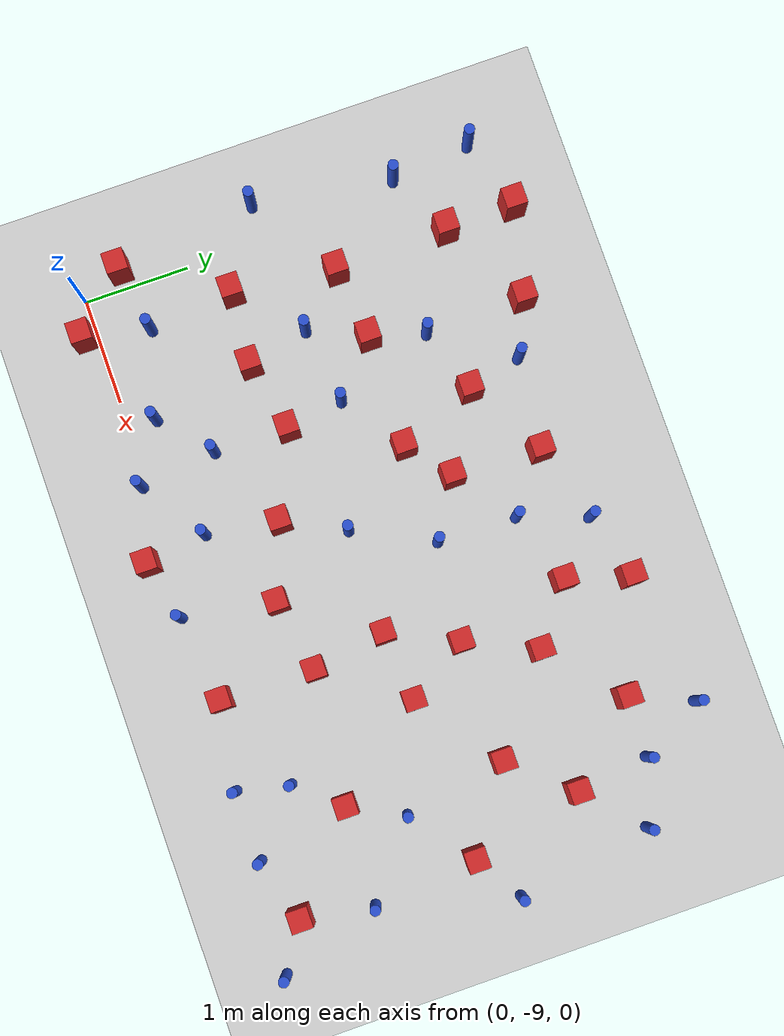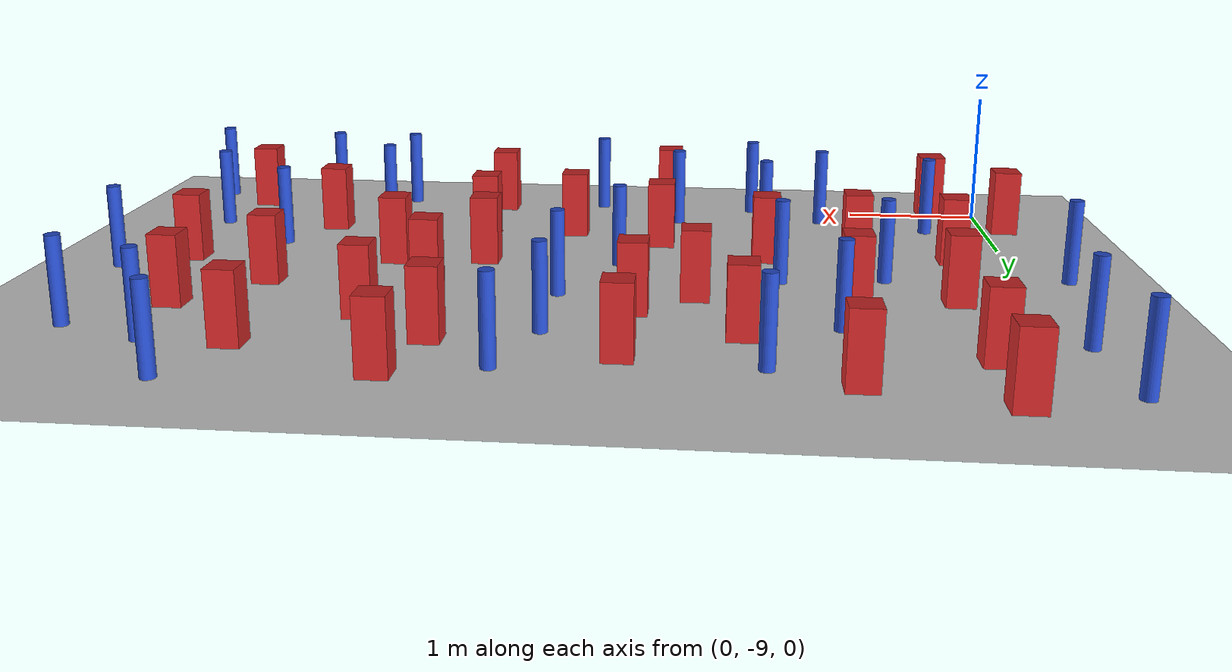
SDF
<sdf version="1.6">
 <world name="default">
  <model name="ground_plane">
   <static>1</static>
   <link name="link">
    <collision name="collision">
     <geometry><plane><normal>0 0 1</normal><size>100 100</size></plane></geometry>
     <surface><friction><ode><mu>100</mu><mu2>50</mu2></ode></friction></surface>
    </collision>
    <visual name="visual">
     <cast_shadows>0</cast_shadows>
     <geometry><plane><normal>0 0 1</normal><size>100 100</size></plane></geometry>
     <material>
      <ambient>1.0 1.0 1.0 1.0</ambient>
      <diffuse>0.8 0.8 0.8 1.0</diffuse>
      <specular>0.01 0.01 0.01 1.000000</specular>
     </material>
    </visual>
   </link>
  </model>
  <model name="square_post_obstacle3">
   <static>true</static>
   <pose>4.49015289714 -7.34152833254 1.91545236811e-07 -7.35059704564e-06 1.12565212e-07 2.39332434364e-05</pose>
   <link name="link">
    <pose>0 0 0.25 0 -0 0</pose>
    <inertial>
     <mass>100</mass>
     <inertia>
      <ixx>0.166667</ixx>
      <ixy>0</ixy>
      <ixz>0</ixz>
      <iyy>0.166667</iyy>
      <iyz>0</iyz>
      <izz>0.166667</izz>
     </inertia>
    </inertial>
    <collision name="collision"><geometry><box><size>.2 .2 .5</size></box></geometry></collision>
    <visual name="visual">
     <geometry><box><size>.2 .2 .5</size></box></geometry>
     <material>
      <script><name>Gazebo/Red</name><uri>file://media/materials/scripts/gazebo.material</uri></script>
     </material>
    </visual>
   </link>
  </model>
  <model name="square_post_obstacle10">
   <static>true</static>
   <pose>1.76560631317 -7.61351531478 1.91545236811e-07 -7.35059704564e-06 1.12565212e-07 2.39332434364e-05</pose>
   <link name="link">
    <pose>0 0 0.25 0 -0 0</pose>
    <inertial>
     <mass>100</mass>
     <inertia>
      <ixx>0.166667</ixx>
      <ixy>0</ixy>
      <ixz>0</ixz>
      <iyy>0.166667</iyy>
      <iyz>0</iyz>
      <izz>0.166667</izz>
     </inertia>
    </inertial>
    <collision name="collision"><geometry><box><size>.2 .2 .5</size></box></geometry></collision>
    <visual name="visual">
     <geometry><box><size>.2 .2 .5</size></box></geometry>
     <material>
      <script><name>Gazebo/Red</name><uri>file://media/materials/scripts/gazebo.material</uri></script>
     </material>
    </visual>
   </link>
  </model>
  <model name="square_post_obstacle15">
   <static>true</static>
   <pose>5.75156060621 -6.21697039321 1.91545236811e-07 -7.35059704564e-06 1.12565212e-07 2.39332434364e-05</pose>
   <link name="link">
    <pose>0 0 0.25 0 -0 0</pose>
    <inertial>
     <mass>100</mass>
     <inertia>
      <ixx>0.166667</ixx>
      <ixy>0</ixy>
      <ixz>0</ixz>
      <iyy>0.166667</iyy>
      <iyz>0</iyz>
      <izz>0.166667</izz>
     </inertia>
    </inertial>
    <collision name="collision"><geometry><box><size>.2 .2 .5</size></box></geometry></collision>
    <visual name="visual">
     <geometry><box><size>.2 .2 .5</size></box></geometry>
     <material>
      <script><name>Gazebo/Red</name><uri>file://media/materials/scripts/gazebo.material</uri></script>
     </material>
    </visual>
   </link>
  </model>
  <model name="square_post_obstacle24">
   <static>true</static>
   <pose>3.91813997311 -8.99396543054 1.91545236811e-07 -7.35059704564e-06 1.12565212e-07 2.39332434364e-05</pose>
   <link name="link">
    <pose>0 0 0.25 0 -0 0</pose>
    <inertial>
     <mass>100</mass>
     <inertia>
      <ixx>0.166667</ixx>
      <ixy>0</ixy>
      <ixz>0</ixz>
      <iyy>0.166667</iyy>
      <iyz>0</iyz>
      <izz>0.166667</izz>
     </inertia>
    </inertial>
    <collision name="collision"><geometry><box><size>.2 .2 .5</size></box></geometry></collision>
    <visual name="visual">
     <geometry><box><size>.2 .2 .5</size></box></geometry>
     <material>
      <script><name>Gazebo/Red</name><uri>file://media/materials/scripts/gazebo.material</uri></script>
     </material>
    </visual>
   </link>
  </model>
  <model name="square_post_obstacle28">
   <static>true</static>
   <pose>5.27055570146 -6.76627332676 1.91545236811e-07 -7.35059704564e-06 1.12565212e-07 2.39332434364e-05</pose>
   <link name="link">
    <pose>0 0 0.25 0 -0 0</pose>
    <inertial>
     <mass>100</mass>
     <inertia>
      <ixx>0.166667</ixx>
      <ixy>0</ixy>
      <ixz>0</ixz>
      <iyy>0.166667</iyy>
      <iyz>0</iyz>
      <izz>0.166667</izz>
     </inertia>
    </inertial>
    <collision name="collision"><geometry><box><size>.2 .2 .5</size></box></geometry></collision>
    <visual name="visual">
     <geometry><box><size>.2 .2 .5</size></box></geometry>
     <material>
      <script><name>Gazebo/Red</name><uri>file://media/materials/scripts/gazebo.material</uri></script>
     </material>
    </visual>
   </link>
  </model>
  <model name="pole_obstacle21">
   <static>true</static>
   <pose>0.467460412805 -8.50239128569 7.38925637345e-09 -8.47170692797e-08 1.24976764852e-08 -1.74513093028e-07</pose>
   <link name="link">
    <pose>0 0 0.3 0 -0 0</pose>
    <inertial>
     <mass>1</mass>
     <inertia><ixx>0.145833</ixx><ixy>0</ixy><ixz>0</ixz><iyy>0.145833</iyy><iyz>0</iyz><izz>0.125</izz></inertia>
    </inertial>
    <collision name="collision">
     <geometry><cylinder><radius>0.05</radius><length>.6</length></cylinder></geometry>
    </collision>
    <visual name="visual">
     <geometry><cylinder><radius>0.05</radius><length>.6</length></cylinder></geometry>
     <material>
      <script><name>Gazebo/Blue</name><uri>file://media/materials/scripts/gazebo.material</uri></script>
     </material>
    </visual>
   </link>
  </model>
  <model name="square_post_obstacle34">
   <static>true</static>
   <pose>1.0899897333 -7.74528293625 1.91545236811e-07 -7.35059704564e-06 1.12565212e-07 2.39332434364e-05</pose>
   <link name="link">
    <pose>0 0 0.25 0 -0 0</pose>
    <inertial>
     <mass>100</mass>
     <inertia>
      <ixx>0.166667</ixx>
      <ixy>0</ixy>
      <ixz>0</ixz>
      <iyy>0.166667</iyy>
      <iyz>0</iyz>
      <izz>0.166667</izz>
     </inertia>
    </inertial>
    <collision name="collision"><geometry><box><size>.2 .2 .5</size></box></geometry></collision>
    <visual name="visual">
     <geometry><box><size>.2 .2 .5</size></box></geometry>
     <material>
      <script><name>Gazebo/Red</name><uri>file://media/materials/scripts/gazebo.material</uri></script>
     </material>
    </visual>
   </link>
  </model>
  <model name="square_post_obstacle35">
   <static>true</static>
   <pose>3.93639156301 -8.10154853966 1.91545236811e-07 -7.35059704564e-06 1.12565212e-07 2.39332434364e-05</pose>
   <link name="link">
    <pose>0 0 0.25 0 -0 0</pose>
    <inertial>
     <mass>100</mass>
     <inertia>
      <ixx>0.166667</ixx>
      <ixy>0</ixy>
      <ixz>0</ixz>
      <iyy>0.166667</iyy>
      <iyz>0</iyz>
      <izz>0.166667</izz>
     </inertia>
    </inertial>
    <collision name="collision"><geometry><box><size>.2 .2 .5</size></box></geometry></collision>
    <visual name="visual">
     <geometry><box><size>.2 .2 .5</size></box></geometry>
     <material>
      <script><name>Gazebo/Red</name><uri>file://media/materials/scripts/gazebo.material</uri></script>
     </material>
    </visual>
   </link>
  </model>
  <model name="square_post_obstacle38">
   <static>true</static>
   <pose>3.90478553042 -5.69663542759 1.91545236811e-07 -7.35059704564e-06 1.12565212e-07 2.39332434364e-05</pose>
   <link name="link">
    <pose>0 0 0.25 0 -0 0</pose>
    <inertial>
     <mass>100</mass>
     <inertia>
      <ixx>0.166667</ixx>
      <ixy>0</ixy>
      <ixz>0</ixz>
      <iyy>0.166667</iyy>
      <iyz>0</iyz>
      <izz>0.166667</izz>
     </inertia>
    </inertial>
    <collision name="collision"><geometry><box><size>.2 .2 .5</size></box></geometry></collision>
    <visual name="visual">
     <geometry><box><size>.2 .2 .5</size></box></geometry>
     <material>
      <script><name>Gazebo/Red</name><uri>file://media/materials/scripts/gazebo.material</uri></script>
     </material>
    </visual>
   </link>
  </model>
  <model name="pole_obstacle41">
   <static>true</static>
   <pose>1.3408904319 -6.10898649915 7.38925637345e-09 -8.47170692799e-08 1.24976765033e-08 -1.74513093018e-07</pose>
   <link name="link">
    <pose>0 0 0.3 0 -0 0</pose>
    <inertial>
     <mass>1</mass>
     <inertia><ixx>0.145833</ixx><ixy>0</ixy><ixz>0</ixz><iyy>0.145833</iyy><iyz>0</iyz><izz>0.125</izz></inertia>
    </inertial>
    <collision name="collision">
     <geometry><cylinder><radius>0.05</radius><length>.6</length></cylinder></geometry>
    </collision>
    <visual name="visual">
     <geometry><cylinder><radius>0.05</radius><length>.6</length></cylinder></geometry>
     <material>
      <script><name>Gazebo/Blue</name><uri>file://media/materials/scripts/gazebo.material</uri></script>
     </material>
    </visual>
   </link>
  </model>
  <model name="square_post_obstacle42">
   <static>true</static>
   <pose>4.13331218403 -6.76436423348 1.91545236811e-07 -7.35059704564e-06 1.12565212e-07 2.39332434364e-05</pose>
   <link name="link">
    <pose>0 0 0.25 0 -0 0</pose>
    <inertial>
     <mass>100</mass>
     <inertia>
      <ixx>0.166667</ixx>
      <ixy>0</ixy>
      <ixz>0</ixz>
      <iyy>0.166667</iyy>
      <iyz>0</iyz>
      <izz>0.166667</izz>
     </inertia>
    </inertial>
    <collision name="collision"><geometry><box><size>.2 .2 .5</size></box></geometry></collision>
    <visual name="visual">
     <geometry><box><size>.2 .2 .5</size></box></geometry>
     <material>
      <script><name>Gazebo/Red</name><uri>file://media/materials/scripts/gazebo.material</uri></script>
     </material>
    </visual>
   </link>
  </model>
  <model name="square_post_obstacle44">
   <static>true</static>
   <pose>0.517624580864 -6.70950547858 1.91545236811e-07 -7.35059704564e-06 1.12565212e-07 2.39332434364e-05</pose>
   <link name="link">
    <pose>0 0 0.25 0 -0 0</pose>
    <inertial>
     <mass>100</mass>
     <inertia>
      <ixx>0.166667</ixx>
      <ixy>0</ixy>
      <ixz>0</ixz>
      <iyy>0.166667</iyy>
      <iyz>0</iyz>
      <izz>0.166667</izz>
     </inertia>
    </inertial>
    <collision name="collision"><geometry><box><size>.2 .2 .5</size></box></geometry></collision>
    <visual name="visual">
     <geometry><box><size>.2 .2 .5</size></box></geometry>
     <material>
      <script><name>Gazebo/Red</name><uri>file://media/materials/scripts/gazebo.material</uri></script>
     </material>
    </visual>
   </link>
  </model>
  <model name="square_post_obstacle53">
   <static>true</static>
   <pose>2.55260413519 -7.962114731 1.91545236811e-07 -7.35059704564e-06 1.12565212e-07 2.39332434364e-05</pose>
   <link name="link">
    <pose>0 0 0.25 0 -0 0</pose>
    <inertial>
     <mass>100</mass>
     <inertia>
      <ixx>0.166667</ixx>
      <ixy>0</ixy>
      <ixz>0</ixz>
      <iyy>0.166667</iyy>
      <iyz>0</iyz>
      <izz>0.166667</izz>
     </inertia>
    </inertial>
    <collision name="collision"><geometry><box><size>.2 .2 .5</size></box></geometry></collision>
    <visual name="visual">
     <geometry><box><size>.2 .2 .5</size></box></geometry>
     <material>
      <script><name>Gazebo/Red</name><uri>file://media/materials/scripts/gazebo.material</uri></script>
     </material>
    </visual>
   </link>
  </model>
  <model name="pole_obstacle59">
   <static>true</static>
   <pose>6.48221668015 -7.01142120705 7.38925637345e-09 -8.47170692796e-08 1.24976764786e-08 -1.74513093032e-07</pose>
   <link name="link">
    <pose>0 0 0.3 0 -0 0</pose>
    <inertial>
     <mass>1</mass>
     <inertia><ixx>0.145833</ixx><ixy>0</ixy><ixz>0</ixz><iyy>0.145833</iyy><iyz>0</iyz><izz>0.125</izz></inertia>
    </inertial>
    <collision name="collision">
     <geometry><cylinder><radius>0.05</radius><length>.6</length></cylinder></geometry>
    </collision>
    <visual name="visual">
     <geometry><cylinder><radius>0.05</radius><length>.6</length></cylinder></geometry>
     <material>
      <script><name>Gazebo/Blue</name><uri>file://media/materials/scripts/gazebo.material</uri></script>
     </material>
    </visual>
   </link>
  </model>
  <model name="square_post_obstacle65">
   <static>true</static>
   <pose>5.09399433338 -5.51176928402 1.91545236811e-07 -7.35059704564e-06 1.12565212e-07 2.39332434364e-05</pose>
   <link name="link">
    <pose>0 0 0.25 0 -0 0</pose>
    <inertial>
     <mass>100</mass>
     <inertia>
      <ixx>0.166667</ixx>
      <ixy>0</ixy>
      <ixz>0</ixz>
      <iyy>0.166667</iyy>
      <iyz>0</iyz>
      <izz>0.166667</izz>
     </inertia>
    </inertial>
    <collision name="collision"><geometry><box><size>.2 .2 .5</size></box></geometry></collision>
    <visual name="visual">
     <geometry><box><size>.2 .2 .5</size></box></geometry>
     <material>
      <script><name>Gazebo/Red</name><uri>file://media/materials/scripts/gazebo.material</uri></script>
     </material>
    </visual>
   </link>
  </model>
  <model name="pole_obstacle64">
   <static>true</static>
   <pose>6.27782935727 -5.72915477477 7.38925637345e-09 -8.47170692796e-08 1.24976764786e-08 -1.74513093032e-07</pose>
   <link name="link">
    <pose>0 0 0.3 0 -0 0</pose>
    <inertial>
     <mass>1</mass>
     <inertia><ixx>0.145833</ixx><ixy>0</ixy><ixz>0</ixz><iyy>0.145833</iyy><iyz>0</iyz><izz>0.125</izz></inertia>
    </inertial>
    <collision name="collision">
     <geometry><cylinder><radius>0.05</radius><length>.6</length></cylinder></geometry>
    </collision>
    <visual name="visual">
     <geometry><cylinder><radius>0.05</radius><length>.6</length></cylinder></geometry>
     <material>
      <script><name>Gazebo/Blue</name><uri>file://media/materials/scripts/gazebo.material</uri></script>
     </material>
    </visual>
   </link>
  </model>
  <model name="square_post_obstacle71">
   <static>true</static>
   <pose>3.82601524067 -7.40294659485 1.91545236811e-07 -7.35059704564e-06 1.12565212e-07 2.39332434364e-05</pose>
   <link name="link">
    <pose>0 0 0.25 0 -0 0</pose>
    <inertial>
     <mass>100</mass>
     <inertia>
      <ixx>0.166667</ixx>
      <ixy>0</ixy>
      <ixz>0</ixz>
      <iyy>0.166667</iyy>
      <iyz>0</iyz>
      <izz>0.166667</izz>
     </inertia>
    </inertial>
    <collision name="collision"><geometry><box><size>.2 .2 .5</size></box></geometry></collision>
    <visual name="visual">
     <geometry><box><size>.2 .2 .5</size></box></geometry>
     <material>
      <script><name>Gazebo/Red</name><uri>file://media/materials/scripts/gazebo.material</uri></script>
     </material>
    </visual>
   </link>
  </model>
  <model name="square_post_obstacle78">
   <static>true</static>
   <pose>4.43615663342 -6.10738290189 1.91545236811e-07 -7.35059704564e-06 1.12565212e-07 2.39332434364e-05</pose>
   <link name="link">
    <pose>0 0 0.25 0 -0 0</pose>
    <inertial>
     <mass>100</mass>
     <inertia>
      <ixx>0.166667</ixx>
      <ixy>0</ixy>
      <ixz>0</ixz>
      <iyy>0.166667</iyy>
      <iyz>0</iyz>
      <izz>0.166667</izz>
     </inertia>
    </inertial>
    <collision name="collision"><geometry><box><size>.2 .2 .5</size></box></geometry></collision>
    <visual name="visual">
     <geometry><box><size>.2 .2 .5</size></box></geometry>
     <material>
      <script><name>Gazebo/Red</name><uri>file://media/materials/scripts/gazebo.material</uri></script>
     </material>
    </visual>
   </link>
  </model>
  <model name="pole_obstacle84">
   <static>true</static>
   <pose>2.83774563869 -7.39265259133 7.38925637345e-09 -8.47170692798e-08 1.24976765033e-08 -1.74513093019e-07</pose>
   <link name="link">
    <pose>0 0 0.3 0 -0 0</pose>
    <inertial>
     <mass>1</mass>
     <inertia><ixx>0.145833</ixx><ixy>0</ixy><ixz>0</ixz><iyy>0.145833</iyy><iyz>0</iyz><izz>0.125</izz></inertia>
    </inertial>
    <collision name="collision">
     <geometry><cylinder><radius>0.05</radius><length>.6</length></cylinder></geometry>
    </collision>
    <visual name="visual">
     <geometry><cylinder><radius>0.05</radius><length>.6</length></cylinder></geometry>
     <material>
      <script><name>Gazebo/Blue</name><uri>file://media/materials/scripts/gazebo.material</uri></script>
     </material>
    </visual>
   </link>
  </model>
  <model name="pole_obstacle85">
   <static>true</static>
   <pose>5.67825487618 -5.51537113062 7.38925637345e-09 -8.47170692796e-08 1.24976764786e-08 -1.74513093032e-07</pose>
   <link name="link">
    <pose>0 0 0.3 0 -0 0</pose>
    <inertial>
     <mass>1</mass>
     <inertia><ixx>0.145833</ixx><ixy>0</ixy><ixz>0</ixz><iyy>0.145833</iyy><iyz>0</iyz><izz>0.125</izz></inertia>
    </inertial>
    <collision name="collision">
     <geometry><cylinder><radius>0.05</radius><length>.6</length></cylinder></geometry>
    </collision>
    <visual name="visual">
     <geometry><cylinder><radius>0.05</radius><length>.6</length></cylinder></geometry>
     <material>
      <script><name>Gazebo/Blue</name><uri>file://media/materials/scripts/gazebo.material</uri></script>
     </material>
    </visual>
   </link>
  </model>
  <model name="square_post_obstacle85">
   <static>true</static>
   <pose>2.52392045222 -9.223249355 1.91545236811e-07 -7.35059704564e-06 1.12565212e-07 2.39332434364e-05</pose>
   <link name="link">
    <pose>0 0 0.25 0 -0 0</pose>
    <inertial>
     <mass>100</mass>
     <inertia>
      <ixx>0.166667</ixx>
      <ixy>0</ixy>
      <ixz>0</ixz>
      <iyy>0.166667</iyy>
      <iyz>0</iyz>
      <izz>0.166667</izz>
     </inertia>
    </inertial>
    <collision name="collision"><geometry><box><size>.2 .2 .5</size></box></geometry></collision>
    <visual name="visual">
     <geometry><box><size>.2 .2 .5</size></box></geometry>
     <material>
      <script><name>Gazebo/Red</name><uri>file://media/materials/scripts/gazebo.material</uri></script>
     </material>
    </visual>
   </link>
  </model>
  <model name="pole_obstacle97">
   <static>true</static>
   <pose>-0.218915325836 -5.1584604246 7.38925637345e-09 -8.47170692799e-08 1.2497676507e-08 -1.74513093018e-07</pose>
   <link name="link">
    <pose>0 0 0.3 0 -0 0</pose>
    <inertial>
     <mass>1</mass>
     <inertia><ixx>0.145833</ixx><ixy>0</ixy><ixz>0</ixz><iyy>0.145833</iyy><iyz>0</iyz><izz>0.125</izz></inertia>
    </inertial>
    <collision name="collision">
     <geometry><cylinder><radius>0.05</radius><length>.6</length></cylinder></geometry>
    </collision>
    <visual name="visual">
     <geometry><cylinder><radius>0.05</radius><length>.6</length></cylinder></geometry>
     <material>
      <script><name>Gazebo/Blue</name><uri>file://media/materials/scripts/gazebo.material</uri></script>
     </material>
    </visual>
   </link>
  </model>
  <model name="square_post_obstacle90">
   <static>true</static>
   <pose>-0.155784412466 -8.60115499393 1.91545236811e-07 -7.35059704564e-06 1.12565212e-07 2.39332434364e-05</pose>
   <link name="link">
    <pose>0 0 0.25 0 -0 0</pose>
    <inertial>
     <mass>100</mass>
     <inertia>
      <ixx>0.166667</ixx>
      <ixy>0</ixy>
      <ixz>0</ixz>
      <iyy>0.166667</iyy>
      <iyz>0</iyz>
      <izz>0.166667</izz>
     </inertia>
    </inertial>
    <collision name="collision"><geometry><box><size>.2 .2 .5</size></box></geometry></collision>
    <visual name="visual">
     <geometry><box><size>.2 .2 .5</size></box></geometry>
     <material>
      <script><name>Gazebo/Red</name><uri>file://media/materials/scripts/gazebo.material</uri></script>
     </material>
    </visual>
   </link>
  </model>
  <model name="pole_obstacle102">
   <static>true</static>
   <pose>1.83140838736 -9.05207618751 7.38925637345e-09 -8.47170692798e-08 1.24976764881e-08 -1.74513093027e-07</pose>
   <link name="link">
    <pose>0 0 0.3 0 -0 0</pose>
    <inertial>
     <mass>1</mass>
     <inertia><ixx>0.145833</ixx><ixy>0</ixy><ixz>0</ixz><iyy>0.145833</iyy><iyz>0</iyz><izz>0.125</izz></inertia>
    </inertial>
    <collision name="collision">
     <geometry><cylinder><radius>0.05</radius><length>.6</length></cylinder></geometry>
    </collision>
    <visual name="visual">
     <geometry><cylinder><radius>0.05</radius><length>.6</length></cylinder></geometry>
     <material>
      <script><name>Gazebo/Blue</name><uri>file://media/materials/scripts/gazebo.material</uri></script>
     </material>
    </visual>
   </link>
  </model>
  <model name="square_post_obstacle91">
   <static>true</static>
   <pose>0.346694982058 -9.11397237317 1.91545236811e-07 -7.35059704564e-06 1.12565212e-07 2.39332434364e-05</pose>
   <link name="link">
    <pose>0 0 0.25 0 -0 0</pose>
    <inertial>
     <mass>100</mass>
     <inertia>
      <ixx>0.166667</ixx>
      <ixy>0</ixy>
      <ixz>0</ixz>
      <iyy>0.166667</iyy>
      <iyz>0</iyz>
      <izz>0.166667</izz>
     </inertia>
    </inertial>
    <collision name="collision"><geometry><box><size>.2 .2 .5</size></box></geometry></collision>
    <visual name="visual">
     <geometry><box><size>.2 .2 .5</size></box></geometry>
     <material>
      <script><name>Gazebo/Red</name><uri>file://media/materials/scripts/gazebo.material</uri></script>
     </material>
    </visual>
   </link>
  </model>
  <model name="pole_obstacle103">
   <static>true</static>
   <pose>1.28400441749 -8.72989072535 7.38925637345e-09 -8.47170692798e-08 1.24976764881e-08 -1.74513093027e-07</pose>
   <link name="link">
    <pose>0 0 0.3 0 -0 0</pose>
    <inertial>
     <mass>1</mass>
     <inertia><ixx>0.145833</ixx><ixy>0</ixy><ixz>0</ixz><iyy>0.145833</iyy><iyz>0</iyz><izz>0.125</izz></inertia>
    </inertial>
    <collision name="collision">
     <geometry><cylinder><radius>0.05</radius><length>.6</length></cylinder></geometry>
    </collision>
    <visual name="visual">
     <geometry><cylinder><radius>0.05</radius><length>.6</length></cylinder></geometry>
     <material>
      <script><name>Gazebo/Blue</name><uri>file://media/materials/scripts/gazebo.material</uri></script>
     </material>
    </visual>
   </link>
  </model>
  <model name="pole_obstacle104">
   <static>true</static>
   <pose>0.950006681577 -7.15767945964 7.38925637345e-09 -8.471706928e-08 1.24976765144e-08 -1.74513093012e-07</pose>
   <link name="link">
    <pose>0 0 0.3 0 -0 0</pose>
    <inertial>
     <mass>1</mass>
     <inertia><ixx>0.145833</ixx><ixy>0</ixy><ixz>0</ixz><iyy>0.145833</iyy><iyz>0</iyz><izz>0.125</izz></inertia>
    </inertial>
    <collision name="collision">
     <geometry><cylinder><radius>0.05</radius><length>.6</length></cylinder></geometry>
    </collision>
    <visual name="visual">
     <geometry><cylinder><radius>0.05</radius><length>.6</length></cylinder></geometry>
     <material>
      <script><name>Gazebo/Blue</name><uri>file://media/materials/scripts/gazebo.material</uri></script>
     </material>
    </visual>
   </link>
  </model>
  <model name="pole_obstacle110">
   <static>true</static>
   <pose>5.41036477938 -9.12401595005 7.38925637345e-09 -8.471706928e-08 1.24976765081e-08 -1.74513093015e-07</pose>
   <link name="link">
    <pose>0 0 0.3 0 -0 0</pose>
    <inertial>
     <mass>1</mass>
     <inertia><ixx>0.145833</ixx><ixy>0</ixy><ixz>0</ixz><iyy>0.145833</iyy><iyz>0</iyz><izz>0.125</izz></inertia>
    </inertial>
    <collision name="collision">
     <geometry><cylinder><radius>0.05</radius><length>.6</length></cylinder></geometry>
    </collision>
    <visual name="visual">
     <geometry><cylinder><radius>0.05</radius><length>.6</length></cylinder></geometry>
     <material>
      <script><name>Gazebo/Blue</name><uri>file://media/materials/scripts/gazebo.material</uri></script>
     </material>
    </visual>
   </link>
  </model>
  <model name="pole_obstacle111">
   <static>true</static>
   <pose>1.68256796784 -7.06172595188 7.38925637345e-09 -8.47170692799e-08 1.24976765033e-08 -1.74513093018e-07</pose>
   <link name="link">
    <pose>0 0 0.3 0 -0 0</pose>
    <inertial>
     <mass>1</mass>
     <inertia><ixx>0.145833</ixx><ixy>0</ixy><ixz>0</ixz><iyy>0.145833</iyy><iyz>0</iyz><izz>0.125</izz></inertia>
    </inertial>
    <collision name="collision">
     <geometry><cylinder><radius>0.05</radius><length>.6</length></cylinder></geometry>
    </collision>
    <visual name="visual">
     <geometry><cylinder><radius>0.05</radius><length>.6</length></cylinder></geometry>
     <material>
      <script><name>Gazebo/Blue</name><uri>file://media/materials/scripts/gazebo.material</uri></script>
     </material>
    </visual>
   </link>
  </model>
  <model name="square_post_obstacle100">
   <static>true</static>
   <pose>6.02164535519 -7.2861456405 1.91545236811e-07 -7.35059704564e-06 1.12565212e-07 2.39332434364e-05</pose>
   <link name="link">
    <pose>0 0 0.25 0 -0 0</pose>
    <inertial>
     <mass>100</mass>
     <inertia>
      <ixx>0.166667</ixx>
      <ixy>0</ixy>
      <ixz>0</ixz>
      <iyy>0.166667</iyy>
      <iyz>0</iyz>
      <izz>0.166667</izz>
     </inertia>
    </inertial>
    <collision name="collision"><geometry><box><size>.2 .2 .5</size></box></geometry></collision>
    <visual name="visual">
     <geometry><box><size>.2 .2 .5</size></box></geometry>
     <material>
      <script><name>Gazebo/Red</name><uri>file://media/materials/scripts/gazebo.material</uri></script>
     </material>
    </visual>
   </link>
  </model>
  <model name="square_post_obstacle101">
   <static>true</static>
   <pose>1.32410158855 -5.16976623578 1.91545236811e-07 -7.35059704564e-06 1.12565212e-07 2.39332434364e-05</pose>
   <link name="link">
    <pose>0 0 0.25 0 -0 0</pose>
    <inertial>
     <mass>100</mass>
     <inertia>
      <ixx>0.166667</ixx>
      <ixy>0</ixy>
      <ixz>0</ixz>
      <iyy>0.166667</iyy>
      <iyz>0</iyz>
      <izz>0.166667</izz>
     </inertia>
    </inertial>
    <collision name="collision"><geometry><box><size>.2 .2 .5</size></box></geometry></collision>
    <visual name="visual">
     <geometry><box><size>.2 .2 .5</size></box></geometry>
     <material>
      <script><name>Gazebo/Red</name><uri>file://media/materials/scripts/gazebo.material</uri></script>
     </material>
    </visual>
   </link>
  </model>
  <model name="pole_obstacle116">
   <static>true</static>
   <pose>2.43918019474 -8.64651049734 7.38925637345e-09 -8.47170692793e-08 1.24976764408e-08 -1.74513093041e-07</pose>
   <link name="link">
    <pose>0 0 0.3 0 -0 0</pose>
    <inertial>
     <mass>1</mass>
     <inertia><ixx>0.145833</ixx><ixy>0</ixy><ixz>0</ixz><iyy>0.145833</iyy><iyz>0</iyz><izz>0.125</izz></inertia>
    </inertial>
    <collision name="collision">
     <geometry><cylinder><radius>0.05</radius><length>.6</length></cylinder></geometry>
    </collision>
    <visual name="visual">
     <geometry><cylinder><radius>0.05</radius><length>.6</length></cylinder></geometry>
     <material>
      <script><name>Gazebo/Blue</name><uri>file://media/materials/scripts/gazebo.material</uri></script>
     </material>
    </visual>
   </link>
  </model>
  <model name="square_post_obstacle112">
   <static>true</static>
   <pose>5.1897885928 -8.23807338279 1.91545236811e-07 -7.35059704564e-06 1.12565212e-07 2.39332434364e-05</pose>
   <link name="link">
    <pose>0 0 0.25 0 -0 0</pose>
    <inertial>
     <mass>100</mass>
     <inertia>
      <ixx>0.166667</ixx>
      <ixy>0</ixy>
      <ixz>0</ixz>
      <iyy>0.166667</iyy>
      <iyz>0</iyz>
      <izz>0.166667</izz>
     </inertia>
    </inertial>
    <collision name="collision"><geometry><box><size>.2 .2 .5</size></box></geometry></collision>
    <visual name="visual">
     <geometry><box><size>.2 .2 .5</size></box></geometry>
     <material>
      <script><name>Gazebo/Red</name><uri>file://media/materials/scripts/gazebo.material</uri></script>
     </material>
    </visual>
   </link>
  </model>
  <model name="pole_obstacle122">
   <static>true</static>
   <pose>5.34878652684 -4.92688318172 7.38925637345e-09 -8.47170692796e-08 1.24976764786e-08 -1.74513093032e-07</pose>
   <link name="link">
    <pose>0 0 0.3 0 -0 0</pose>
    <inertial>
     <mass>1</mass>
     <inertia><ixx>0.145833</ixx><ixy>0</ixy><ixz>0</ixz><iyy>0.145833</iyy><iyz>0</iyz><izz>0.125</izz></inertia>
    </inertial>
    <collision name="collision">
     <geometry><cylinder><radius>0.05</radius><length>.6</length></cylinder></geometry>
    </collision>
    <visual name="visual">
     <geometry><cylinder><radius>0.05</radius><length>.6</length></cylinder></geometry>
     <material>
      <script><name>Gazebo/Blue</name><uri>file://media/materials/scripts/gazebo.material</uri></script>
     </material>
    </visual>
   </link>
  </model>
  <model name="pole_obstacle127">
   <static>true</static>
   <pose>3.4468628076 -5.26212710168 7.38925637345e-09 -8.47170692798e-08 1.24976765033e-08 -1.74513093019e-07</pose>
   <link name="link">
    <pose>0 0 0.3 0 -0 0</pose>
    <inertial>
     <mass>1</mass>
     <inertia><ixx>0.145833</ixx><ixy>0</ixy><ixz>0</ixz><iyy>0.145833</iyy><iyz>0</iyz><izz>0.125</izz></inertia>
    </inertial>
    <collision name="collision">
     <geometry><cylinder><radius>0.05</radius><length>.6</length></cylinder></geometry>
    </collision>
    <visual name="visual">
     <geometry><cylinder><radius>0.05</radius><length>.6</length></cylinder></geometry>
     <material>
      <script><name>Gazebo/Blue</name><uri>file://media/materials/scripts/gazebo.material</uri></script>
     </material>
    </visual>
   </link>
  </model>
  <model name="pole_obstacle138">
   <static>true</static>
   <pose>4.74404614235 -9.13575292896 7.38925637345e-09 -8.471706928e-08 1.24976765081e-08 -1.74513093015e-07</pose>
   <link name="link">
    <pose>0 0 0.3 0 -0 0</pose>
    <inertial>
     <mass>1</mass>
     <inertia><ixx>0.145833</ixx><ixy>0</ixy><ixz>0</ixz><iyy>0.145833</iyy><iyz>0</iyz><izz>0.125</izz></inertia>
    </inertial>
    <collision name="collision">
     <geometry><cylinder><radius>0.05</radius><length>.6</length></cylinder></geometry>
    </collision>
    <visual name="visual">
     <geometry><cylinder><radius>0.05</radius><length>.6</length></cylinder></geometry>
     <material>
      <script><name>Gazebo/Blue</name><uri>file://media/materials/scripts/gazebo.material</uri></script>
     </material>
    </visual>
   </link>
  </model>
  <model name="square_post_obstacle119">
   <static>true</static>
   <pose>2.67234921324 -6.33280927416 1.91545236811e-07 -7.35059704564e-06 1.12565212e-07 2.39332434364e-05</pose>
   <link name="link">
    <pose>0 0 0.25 0 -0 0</pose>
    <inertial>
     <mass>100</mass>
     <inertia>
      <ixx>0.166667</ixx>
      <ixy>0</ixy>
      <ixz>0</ixz>
      <iyy>0.166667</iyy>
      <iyz>0</iyz>
      <izz>0.166667</izz>
     </inertia>
    </inertial>
    <collision name="collision"><geometry><box><size>.2 .2 .5</size></box></geometry></collision>
    <visual name="visual">
     <geometry><box><size>.2 .2 .5</size></box></geometry>
     <material>
      <script><name>Gazebo/Red</name><uri>file://media/materials/scripts/gazebo.material</uri></script>
     </material>
    </visual>
   </link>
  </model>
  <model name="pole_obstacle145">
   <static>true</static>
   <pose>3.22574959968 -5.89934683271 7.38925637345e-09 -8.47170692798e-08 1.24976765033e-08 -1.74513093019e-07</pose>
   <link name="link">
    <pose>0 0 0.3 0 -0 0</pose>
    <inertial>
     <mass>1</mass>
     <inertia><ixx>0.145833</ixx><ixy>0</ixy><ixz>0</ixz><iyy>0.145833</iyy><iyz>0</iyz><izz>0.125</izz></inertia>
    </inertial>
    <collision name="collision">
     <geometry><cylinder><radius>0.05</radius><length>.6</length></cylinder></geometry>
    </collision>
    <visual name="visual">
     <geometry><cylinder><radius>0.05</radius><length>.6</length></cylinder></geometry>
     <material>
      <script><name>Gazebo/Blue</name><uri>file://media/materials/scripts/gazebo.material</uri></script>
     </material>
    </visual>
   </link>
  </model>
  <model name="square_post_obstacle136">
   <static>true</static>
   <pose>0.487788441395 -5.62737244751 1.91545236811e-07 -7.35059704564e-06 1.12565212e-07 2.39332434364e-05</pose>
   <link name="link">
    <pose>0 0 0.25 0 -0 0</pose>
    <inertial>
     <mass>100</mass>
     <inertia>
      <ixx>0.166667</ixx>
      <ixy>0</ixy>
      <ixz>0</ixz>
      <iyy>0.166667</iyy>
      <iyz>0</iyz>
      <izz>0.166667</izz>
     </inertia>
    </inertial>
    <collision name="collision"><geometry><box><size>.2 .2 .5</size></box></geometry></collision>
    <visual name="visual">
     <geometry><box><size>.2 .2 .5</size></box></geometry>
     <material>
      <script><name>Gazebo/Red</name><uri>file://media/materials/scripts/gazebo.material</uri></script>
     </material>
    </visual>
   </link>
  </model>
  <model name="pole_obstacle147">
   <static>true</static>
   <pose>-0.133204930748 -5.92339348129 7.38925637345e-09 -8.47170692799e-08 1.24976765043e-08 -1.74513093019e-07</pose>
   <link name="link">
    <pose>0 0 0.3 0 -0 0</pose>
    <inertial>
     <mass>1</mass>
     <inertia><ixx>0.145833</ixx><ixy>0</ixy><ixz>0</ixz><iyy>0.145833</iyy><iyz>0</iyz><izz>0.125</izz></inertia>
    </inertial>
    <collision name="collision">
     <geometry><cylinder><radius>0.05</radius><length>.6</length></cylinder></geometry>
    </collision>
    <visual name="visual">
     <geometry><cylinder><radius>0.05</radius><length>.6</length></cylinder></geometry>
     <material>
      <script><name>Gazebo/Blue</name><uri>file://media/materials/scripts/gazebo.material</uri></script>
     </material>
    </visual>
   </link>
  </model>
  <model name="pole_obstacle154">
   <static>true</static>
   <pose>3.20514518075 -6.65320107947 7.38925637345e-09 -8.47170692798e-08 1.24976765033e-08 -1.74513093019e-07</pose>
   <link name="link">
    <pose>0 0 0.3 0 -0 0</pose>
    <inertial>
     <mass>1</mass>
     <inertia><ixx>0.145833</ixx><ixy>0</ixy><ixz>0</ixz><iyy>0.145833</iyy><iyz>0</iyz><izz>0.125</izz></inertia>
    </inertial>
    <collision name="collision">
     <geometry><cylinder><radius>0.05</radius><length>.6</length></cylinder></geometry>
    </collision>
    <visual name="visual">
     <geometry><cylinder><radius>0.05</radius><length>.6</length></cylinder></geometry>
     <material>
      <script><name>Gazebo/Blue</name><uri>file://media/materials/scripts/gazebo.material</uri></script>
     </material>
    </visual>
   </link>
  </model>
  <model name="pole_obstacle158">
   <static>true</static>
   <pose>3.09015094105 -9.10047010247 7.38925637345e-09 -8.47170692793e-08 1.24976764408e-08 -1.74513093041e-07</pose>
   <link name="link">
    <pose>0 0 0.3 0 -0 0</pose>
    <inertial>
     <mass>1</mass>
     <inertia><ixx>0.145833</ixx><ixy>0</ixy><ixz>0</ixz><iyy>0.145833</iyy><iyz>0</iyz><izz>0.125</izz></inertia>
    </inertial>
    <collision name="collision">
     <geometry><cylinder><radius>0.05</radius><length>.6</length></cylinder></geometry>
    </collision>
    <visual name="visual">
     <geometry><cylinder><radius>0.05</radius><length>.6</length></cylinder></geometry>
     <material>
      <script><name>Gazebo/Blue</name><uri>file://media/materials/scripts/gazebo.material</uri></script>
     </material>
    </visual>
   </link>
  </model>
  <model name="pole_obstacle162">
   <static>true</static>
   <pose>1.83639393691 -5.38518194498 7.38925637345e-09 -8.47170692799e-08 1.24976765033e-08 -1.74513093018e-07</pose>
   <link name="link">
    <pose>0 0 0.3 0 -0 0</pose>
    <inertial>
     <mass>1</mass>
     <inertia><ixx>0.145833</ixx><ixy>0</ixy><ixz>0</ixz><iyy>0.145833</iyy><iyz>0</iyz><izz>0.125</izz></inertia>
    </inertial>
    <collision name="collision">
     <geometry><cylinder><radius>0.05</radius><length>.6</length></cylinder></geometry>
    </collision>
    <visual name="visual">
     <geometry><cylinder><radius>0.05</radius><length>.6</length></cylinder></geometry>
     <material>
      <script><name>Gazebo/Blue</name><uri>file://media/materials/scripts/gazebo.material</uri></script>
     </material>
    </visual>
   </link>
  </model>
  <model name="pole_obstacle167">
   <static>true</static>
   <pose>5.4582188408 -7.7386792895 7.38925637345e-09 -8.47170692796e-08 1.24976764786e-08 -1.74513093032e-07</pose>
   <link name="link">
    <pose>0 0 0.3 0 -0 0</pose>
    <inertial>
     <mass>1</mass>
     <inertia><ixx>0.145833</ixx><ixy>0</ixy><ixz>0</ixz><iyy>0.145833</iyy><iyz>0</iyz><izz>0.125</izz></inertia>
    </inertial>
    <collision name="collision">
     <geometry><cylinder><radius>0.05</radius><length>.6</length></cylinder></geometry>
    </collision>
    <visual name="visual">
     <geometry><cylinder><radius>0.05</radius><length>.6</length></cylinder></geometry>
     <material>
      <script><name>Gazebo/Blue</name><uri>file://media/materials/scripts/gazebo.material</uri></script>
     </material>
    </visual>
   </link>
  </model>
  <model name="square_post_obstacle162">
   <static>true</static>
   <pose>1.97093863378 -5.91435014001 1.91545236811e-07 -7.35059704564e-06 1.12565212e-07 2.39332434364e-05</pose>
   <link name="link">
    <pose>0 0 0.25 0 -0 0</pose>
    <inertial>
     <mass>100</mass>
     <inertia>
      <ixx>0.166667</ixx>
      <ixy>0</ixy>
      <ixz>0</ixz>
      <iyy>0.166667</iyy>
      <iyz>0</iyz>
      <izz>0.166667</izz>
     </inertia>
    </inertial>
    <collision name="collision"><geometry><box><size>.2 .2 .5</size></box></geometry></collision>
    <visual name="visual">
     <geometry><box><size>.2 .2 .5</size></box></geometry>
     <material>
      <script><name>Gazebo/Red</name><uri>file://media/materials/scripts/gazebo.material</uri></script>
     </material>
    </visual>
   </link>
  </model>
  <model name="square_post_obstacle165">
   <static>true</static>
   <pose>3.24402447707 -8.22370043682 1.91545236811e-07 -7.35059704564e-06 1.12565212e-07 2.39332434364e-05</pose>
   <link name="link">
    <pose>0 0 0.25 0 -0 0</pose>
    <inertial>
     <mass>100</mass>
     <inertia>
      <ixx>0.166667</ixx>
      <ixy>0</ixy>
      <ixz>0</ixz>
      <iyy>0.166667</iyy>
      <iyz>0</iyz>
      <izz>0.166667</izz>
     </inertia>
    </inertial>
    <collision name="collision"><geometry><box><size>.2 .2 .5</size></box></geometry></collision>
    <visual name="visual">
     <geometry><box><size>.2 .2 .5</size></box></geometry>
     <material>
      <script><name>Gazebo/Red</name><uri>file://media/materials/scripts/gazebo.material</uri></script>
     </material>
    </visual>
   </link>
  </model>
  <model name="pole_obstacle185">
   <static>true</static>
   <pose>1.74417947382 -8.31984793698 7.38925637345e-09 -8.47170692798e-08 1.24976764881e-08 -1.74513093027e-07</pose>
   <link name="link">
    <pose>0 0 0.3 0 -0 0</pose>
    <inertial>
     <mass>1</mass>
     <inertia><ixx>0.145833</ixx><ixy>0</ixy><ixz>0</ixz><iyy>0.145833</iyy><iyz>0</iyz><izz>0.125</izz></inertia>
    </inertial>
    <collision name="collision">
     <geometry><cylinder><radius>0.05</radius><length>.6</length></cylinder></geometry>
    </collision>
    <visual name="visual">
     <geometry><cylinder><radius>0.05</radius><length>.6</length></cylinder></geometry>
     <material>
      <script><name>Gazebo/Blue</name><uri>file://media/materials/scripts/gazebo.material</uri></script>
     </material>
    </visual>
   </link>
  </model>
  <model name="square_post_obstacle174">
   <static>true</static>
   <pose>0.39646796651 -7.68519857631 1.91545236811e-07 -7.35059704564e-06 1.12565212e-07 2.39332434364e-05</pose>
   <link name="link">
    <pose>0 0 0.25 0 -0 0</pose>
    <inertial>
     <mass>100</mass>
     <inertia>
      <ixx>0.166667</ixx>
      <ixy>0</ixy>
      <ixz>0</ixz>
      <iyy>0.166667</iyy>
      <iyz>0</iyz>
      <izz>0.166667</izz>
     </inertia>
    </inertial>
    <collision name="collision"><geometry><box><size>.2 .2 .5</size></box></geometry></collision>
    <visual name="visual">
     <geometry><box><size>.2 .2 .5</size></box></geometry>
     <material>
      <script><name>Gazebo/Red</name><uri>file://media/materials/scripts/gazebo.material</uri></script>
     </material>
    </visual>
   </link>
  </model>
  <model name="square_post_obstacle187">
   <static>true</static>
   <pose>2.27073246025 -6.65893152164 1.91545236811e-07 -7.35059704564e-06 1.12565212e-07 2.39332434364e-05</pose>
   <link name="link">
    <pose>0 0 0.25 0 -0 0</pose>
    <inertial>
     <mass>100</mass>
     <inertia>
      <ixx>0.166667</ixx>
      <ixy>0</ixy>
      <ixz>0</ixz>
      <iyy>0.166667</iyy>
      <iyz>0</iyz>
      <izz>0.166667</izz>
     </inertia>
    </inertial>
    <collision name="collision"><geometry><box><size>.2 .2 .5</size></box></geometry></collision>
    <visual name="visual">
     <geometry><box><size>.2 .2 .5</size></box></geometry>
     <material>
      <script><name>Gazebo/Red</name><uri>file://media/materials/scripts/gazebo.material</uri></script>
     </material>
    </visual>
   </link>
  </model>
  <model name="square_post_obstacle194">
   <static>true</static>
   <pose>1.20489813307 -6.63444912781 1.91545236811e-07 -7.35059704564e-06 1.12565212e-07 2.39332434364e-05</pose>
   <link name="link">
    <pose>0 0 0.25 0 -0 0</pose>
    <inertial>
     <mass>100</mass>
     <inertia>
      <ixx>0.166667</ixx>
      <ixy>0</ixy>
      <ixz>0</ixz>
      <iyy>0.166667</iyy>
      <iyz>0</iyz>
      <izz>0.166667</izz>
     </inertia>
    </inertial>
    <collision name="collision"><geometry><box><size>.2 .2 .5</size></box></geometry></collision>
    <visual name="visual">
     <geometry><box><size>.2 .2 .5</size></box></geometry>
     <material>
      <script><name>Gazebo/Red</name><uri>file://media/materials/scripts/gazebo.material</uri></script>
     </material>
    </visual>
   </link>
  </model>
  <model name="square_post_obstacle195">
   <static>true</static>
   <pose>2.70965681964 -5.4917787895 1.91545236811e-07 -7.35059704564e-06 1.12565212e-07 2.39332434364e-05</pose>
   <link name="link">
    <pose>0 0 0.25 0 -0 0</pose>
    <inertial>
     <mass>100</mass>
     <inertia>
      <ixx>0.166667</ixx>
      <ixy>0</ixy>
      <ixz>0</ixz>
      <iyy>0.166667</iyy>
      <iyz>0</iyz>
      <izz>0.166667</izz>
     </inertia>
    </inertial>
    <collision name="collision"><geometry><box><size>.2 .2 .5</size></box></geometry></collision>
    <visual name="visual">
     <geometry><box><size>.2 .2 .5</size></box></geometry>
     <material>
      <script><name>Gazebo/Red</name><uri>file://media/materials/scripts/gazebo.material</uri></script>
     </material>
    </visual>
   </link>
  </model>
  <model name="square_post_obstacle198">
   <static>true</static>
   <pose>0.47169364964 -4.96468522345 1.91545236811e-07 -7.35059704564e-06 1.12565212e-07 2.39332434364e-05</pose>
   <link name="link">
    <pose>0 0 0.25 0 -0 0</pose>
    <inertial>
     <mass>100</mass>
     <inertia>
      <ixx>0.166667</ixx>
      <ixy>0</ixy>
      <ixz>0</ixz>
      <iyy>0.166667</iyy>
      <iyz>0</iyz>
      <izz>0.166667</izz>
     </inertia>
    </inertial>
    <collision name="collision"><geometry><box><size>.2 .2 .5</size></box></geometry></collision>
    <visual name="visual">
     <geometry><box><size>.2 .2 .5</size></box></geometry>
     <material>
      <script><name>Gazebo/Red</name><uri>file://media/materials/scripts/gazebo.material</uri></script>
     </material>
    </visual>
   </link>
  </model>
  <model name="pole_obstacle191">
   <static>true</static>
   <pose>6.12778653725 -8.2798491876 7.38925637345e-09 -8.471706928e-08 1.24976765081e-08 -1.74513093015e-07</pose>
   <link name="link">
    <pose>0 0 0.3 0 -0 0</pose>
    <inertial>
     <mass>1</mass>
     <inertia><ixx>0.145833</ixx><ixy>0</ixy><ixz>0</ixz><iyy>0.145833</iyy><iyz>0</iyz><izz>0.125</izz></inertia>
    </inertial>
    <collision name="collision">
     <geometry><cylinder><radius>0.05</radius><length>.6</length></cylinder></geometry>
    </collision>
    <visual name="visual">
     <geometry><cylinder><radius>0.05</radius><length>.6</length></cylinder></geometry>
     <material>
      <script><name>Gazebo/Blue</name><uri>file://media/materials/scripts/gazebo.material</uri></script>
     </material>
    </visual>
   </link>
  </model>
  <model name="pole_obstacle214">
   <static>true</static>
   <pose>-0.338289425019 -7.24713711465 7.38925637345e-09 -8.471706928e-08 1.24976765079e-08 -1.74513093015e-07</pose>
   <link name="link">
    <pose>0 0 0.3 0 -0 0</pose>
    <inertial>
     <mass>1</mass>
     <inertia><ixx>0.145833</ixx><ixy>0</ixy><ixz>0</ixz><iyy>0.145833</iyy><iyz>0</iyz><izz>0.125</izz></inertia>
    </inertial>
    <collision name="collision">
     <geometry><cylinder><radius>0.05</radius><length>.6</length></cylinder></geometry>
    </collision>
    <visual name="visual">
     <geometry><cylinder><radius>0.05</radius><length>.6</length></cylinder></geometry>
     <material>
      <script><name>Gazebo/Blue</name><uri>file://media/materials/scripts/gazebo.material</uri></script>
     </material>
    </visual>
   </link>
  </model>
  <model name="pole_obstacle217">
   <static>true</static>
   <pose>4.85150368252 -8.64317999424 7.38925637345e-09 -8.471706928e-08 1.24976765081e-08 -1.74513093015e-07</pose>
   <link name="link">
    <pose>0 0 0.3 0 -0 0</pose>
    <inertial>
     <mass>1</mass>
     <inertia><ixx>0.145833</ixx><ixy>0</ixy><ixz>0</ixz><iyy>0.145833</iyy><iyz>0</iyz><izz>0.125</izz></inertia>
    </inertial>
    <collision name="collision">
     <geometry><cylinder><radius>0.05</radius><length>.6</length></cylinder></geometry>
    </collision>
    <visual name="visual">
     <geometry><cylinder><radius>0.05</radius><length>.6</length></cylinder></geometry>
     <material>
      <script><name>Gazebo/Blue</name><uri>file://media/materials/scripts/gazebo.material</uri></script>
     </material>
    </visual>
   </link>
  </model>
  <model name="pole_obstacle225">
   <static>true</static>
   <pose>6.4485448193 -9.23847817167 7.38925637345e-09 -8.471706928e-08 1.24976765081e-08 -1.74513093015e-07</pose>
   <link name="link">
    <pose>0 0 0.3 0 -0 0</pose>
    <inertial>
     <mass>1</mass>
     <inertia><ixx>0.145833</ixx><ixy>0</ixy><ixz>0</ixz><iyy>0.145833</iyy><iyz>0</iyz><izz>0.125</izz></inertia>
    </inertial>
    <collision name="collision">
     <geometry><cylinder><radius>0.05</radius><length>.6</length></cylinder></geometry>
    </collision>
    <visual name="visual">
     <geometry><cylinder><radius>0.05</radius><length>.6</length></cylinder></geometry>
     <material>
      <script><name>Gazebo/Blue</name><uri>file://media/materials/scripts/gazebo.material</uri></script>
     </material>
    </visual>
   </link>
  </model>
  <model name="square_post_obstacle217">
   <static>true</static>
   <pose>5.9976299648 -8.94496001192 1.91545236811e-07 -7.35059704564e-06 1.12565212e-07 2.39332434364e-05</pose>
   <link name="link">
    <pose>0 0 0.25 0 -0 0</pose>
    <inertial>
     <mass>100</mass>
     <inertia>
      <ixx>0.166667</ixx>
      <ixy>0</ixy>
      <ixz>0</ixz>
      <iyy>0.166667</iyy>
      <iyz>0</iyz>
      <izz>0.166667</izz>
     </inertia>
    </inertial>
    <collision name="collision"><geometry><box><size>.2 .2 .5</size></box></geometry></collision>
    <visual name="visual">
     <geometry><box><size>.2 .2 .5</size></box></geometry>
     <material>
      <script><name>Gazebo/Red</name><uri>file://media/materials/scripts/gazebo.material</uri></script>
     </material>
    </visual>
   </link>
  </model>
  <model name="square_post_obstacle224">
   <static>true</static>
   <pose>4.0737399648 -5.10601001192 1.91545236811e-07 -7.35059704564e-06 1.12565212e-07 2.39332434364e-05</pose>
   <link name="link">
    <pose>0 0 0.25 0 -0 0</pose>
    <inertial>
     <mass>100</mass>
     <inertia>
      <ixx>0.166667</ixx>
      <ixy>0</ixy>
      <ixz>0</ixz>
      <iyy>0.166667</iyy>
      <iyz>0</iyz>
      <izz>0.166667</izz>
     </inertia>
    </inertial>
    <collision name="collision"><geometry><box><size>.2 .2 .5</size></box></geometry></collision>
    <visual name="visual">
     <geometry><box><size>.2 .2 .5</size></box></geometry>
     <material>
      <script><name>Gazebo/Red</name><uri>file://media/materials/scripts/gazebo.material</uri></script>
     </material>
    </visual>
   </link>
  </model>
 </world>
</sdf>
